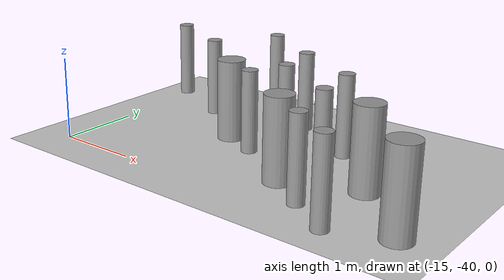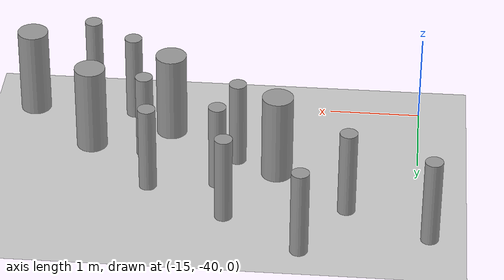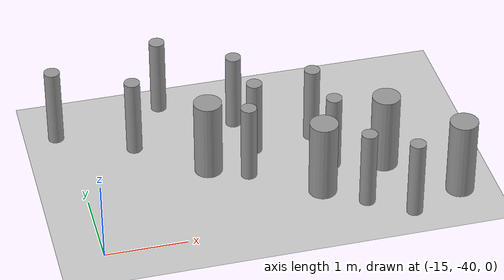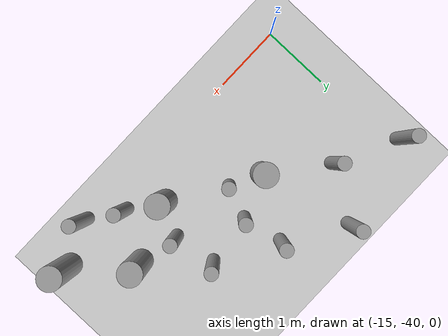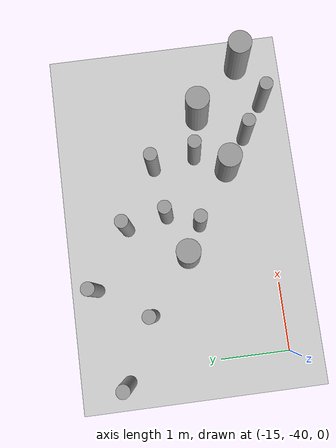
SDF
<sdf version="1.6">
 <world name="default">
  <model name="ground_plane">
   <static>1</static>
   <link name="link">
    <collision name="collision">
     <geometry><plane><normal>0 0 1</normal><size>100 100</size></plane></geometry>
     <surface><friction><ode><mu>100</mu><mu2>50</mu2></ode></friction></surface>
    </collision>
    <visual name="visual">
     <cast_shadows>0</cast_shadows>
     <geometry><plane><normal>0 0 1</normal><size>100 100</size></plane></geometry>
     <material>
      <script><uri>file://media/materials/scripts/gazebo.material</uri><name>Gazebo/Grey</name></script>
     </material>
    </visual>
   </link>
  </model>
  <model name="cyl_wall_clone_clone_1_clone_clone">
   <link name="link_0">
    <pose>-2.73893 -0.366465 0 0 -0 0</pose>
    <inertial>
     <mass>0.0374993</mass>
     <inertia>
      <ixx>0.00321281</ixx>
      <ixy>0</ixy>
      <ixz>0</ixz>
      <iyy>0.00321281</iyy>
      <iyz>0</iyz>
      <izz>0.000175774</izz>
     </inertia>
    </inertial>
    <visual name="visual">
     <geometry><cylinder><radius>0.0968661</radius><length>1</length></cylinder></geometry>
     <material>
      <lighting>1</lighting>
      <script><uri>file://media/materials/scripts/gazebo.material</uri><name>Gazebo/Grey</name></script>
      <ambient>0.3 0.3 0.3 1</ambient>
      <diffuse>0.7 0.7 0.7 1</diffuse>
      <specular>0.01 0.01 0.01 1</specular>
      <emissive>0 0 0 1</emissive>
     </material>
    </visual>
    <collision name="collision">
     <geometry><cylinder><radius>0.096866</radius><length>1</length></cylinder></geometry>
     <surface>
      <friction>
       <ode><mu>1</mu><mu2>1</mu2><fdir1>0 0 0</fdir1><slip1>0</slip1><slip2>0</slip2></ode>
       <torsional>
        <coefficient>1</coefficient>
        <patch_radius>0</patch_radius>
        <surface_radius>0</surface_radius>
        <use_patch_radius>1</use_patch_radius>
        <ode><slip>0</slip></ode>
       </torsional>
      </friction>
      <bounce><restitution_coefficient>0</restitution_coefficient><threshold>1e+06</threshold></bounce>
      <contact>
       <collide_without_contact>0</collide_without_contact>
       <collide_without_contact_bitmask>1</collide_without_contact_bitmask>
       <collide_bitmask>1</collide_bitmask>
       <ode>
        <soft_cfm>0</soft_cfm>
        <soft_erp>0.2</soft_erp>
        <kp>1e+13</kp>
        <kd>1</kd>
        <max_vel>0.01</max_vel>
        <min_depth>0</min_depth>
       </ode>
       <bullet>
        <split_impulse>1</split_impulse>
        <split_impulse_penetration_threshold>-0.01</split_impulse_penetration_threshold>
        <soft_cfm>0</soft_cfm>
        <soft_erp>0.2</soft_erp>
        <kp>1e+13</kp>
        <kd>1</kd>
       </bullet>
      </contact>
     </surface>
    </collision>
   </link>
   <link name="link_0_clone">
    <pose>-1.73893 0.61877 0 0 -0 0</pose>
    <inertial>
     <mass>0.0374993</mass>
     <inertia>
      <ixx>0.00321281</ixx>
      <ixy>0</ixy>
      <ixz>0</ixz>
      <iyy>0.00321281</iyy>
      <iyz>0</iyz>
      <izz>0.000175774</izz>
     </inertia>
    </inertial>
    <visual name="visual">
     <geometry><cylinder><radius>0.0968661</radius><length>1</length></cylinder></geometry>
     <material>
      <lighting>1</lighting>
      <script><uri>file://media/materials/scripts/gazebo.material</uri><name>Gazebo/Grey</name></script>
      <ambient>0.3 0.3 0.3 1</ambient>
      <diffuse>0.7 0.7 0.7 1</diffuse>
      <specular>0.01 0.01 0.01 1</specular>
      <emissive>0 0 0 1</emissive>
      <shader type="pixel"/>
     </material>
    </visual>
    <collision name="collision">
     <geometry><cylinder><radius>0.096866</radius><length>1</length></cylinder></geometry>
     <surface>
      <friction>
       <ode><mu>1</mu><mu2>1</mu2><fdir1>0 0 0</fdir1><slip1>0</slip1><slip2>0</slip2></ode>
       <torsional>
        <coefficient>1</coefficient>
        <patch_radius>0</patch_radius>
        <surface_radius>0</surface_radius>
        <use_patch_radius>1</use_patch_radius>
        <ode><slip>0</slip></ode>
       </torsional>
      </friction>
      <bounce><restitution_coefficient>0</restitution_coefficient><threshold>1e+06</threshold></bounce>
      <contact>
       <collide_without_contact>0</collide_without_contact>
       <collide_without_contact_bitmask>1</collide_without_contact_bitmask>
       <collide_bitmask>1</collide_bitmask>
       <ode>
        <soft_cfm>0</soft_cfm>
        <soft_erp>0.2</soft_erp>
        <kp>1e+13</kp>
        <kd>1</kd>
        <max_vel>0.01</max_vel>
        <min_depth>0</min_depth>
       </ode>
       <bullet>
        <split_impulse>1</split_impulse>
        <split_impulse_penetration_threshold>-0.01</split_impulse_penetration_threshold>
        <soft_cfm>0</soft_cfm>
        <soft_erp>0.2</soft_erp>
        <kp>1e+13</kp>
        <kd>1</kd>
       </bullet>
      </contact>
     </surface>
    </collision>
   </link>
   <link name="link_0_clone_clone">
    <pose>-0.327073 0.143919 0 0 -0 0</pose>
    <inertial>
     <mass>0.0374993</mass>
     <inertia>
      <ixx>0.00321281</ixx>
      <ixy>0</ixy>
      <ixz>0</ixz>
      <iyy>0.00321281</iyy>
      <iyz>0</iyz>
      <izz>0.000175774</izz>
     </inertia>
    </inertial>
    <visual name="visual">
     <geometry><cylinder><radius>0.0968661</radius><length>1</length></cylinder></geometry>
     <material>
      <lighting>1</lighting>
      <script><uri>file://media/materials/scripts/gazebo.material</uri><name>Gazebo/Grey</name></script>
      <ambient>0.3 0.3 0.3 1</ambient>
      <diffuse>0.7 0.7 0.7 1</diffuse>
      <specular>0.01 0.01 0.01 1</specular>
      <emissive>0 0 0 1</emissive>
      <shader type="pixel"/>
     </material>
    </visual>
    <collision name="collision">
     <geometry><cylinder><radius>0.096866</radius><length>1</length></cylinder></geometry>
     <surface>
      <friction>
       <ode><mu>1</mu><mu2>1</mu2><fdir1>0 0 0</fdir1><slip1>0</slip1><slip2>0</slip2></ode>
       <torsional>
        <coefficient>1</coefficient>
        <patch_radius>0</patch_radius>
        <surface_radius>0</surface_radius>
        <use_patch_radius>1</use_patch_radius>
        <ode><slip>0</slip></ode>
       </torsional>
      </friction>
      <bounce><restitution_coefficient>0</restitution_coefficient><threshold>1e+06</threshold></bounce>
      <contact>
       <collide_without_contact>0</collide_without_contact>
       <collide_without_contact_bitmask>1</collide_without_contact_bitmask>
       <collide_bitmask>1</collide_bitmask>
       <ode>
        <soft_cfm>0</soft_cfm>
        <soft_erp>0.2</soft_erp>
        <kp>1e+13</kp>
        <kd>1</kd>
        <max_vel>0.01</max_vel>
        <min_depth>0</min_depth>
       </ode>
       <bullet>
        <split_impulse>1</split_impulse>
        <split_impulse_penetration_threshold>-0.01</split_impulse_penetration_threshold>
        <soft_cfm>0</soft_cfm>
        <soft_erp>0.2</soft_erp>
        <kp>1e+13</kp>
        <kd>1</kd>
       </bullet>
      </contact>
     </surface>
    </collision>
   </link>
   <link name="link_0_clone_clone_0">
    <pose>1.26107 -0.419359 0 0 -0 0</pose>
    <inertial>
     <mass>0.0374993</mass>
     <inertia>
      <ixx>0.00321281</ixx>
      <ixy>0</ixy>
      <ixz>0</ixz>
      <iyy>0.00321281</iyy>
      <iyz>0</iyz>
      <izz>0.000175774</izz>
     </inertia>
    </inertial>
    <visual name="visual">
     <geometry><cylinder><radius>0.0968661</radius><length>1</length></cylinder></geometry>
     <material>
      <lighting>1</lighting>
      <script><uri>file://media/materials/scripts/gazebo.material</uri><name>Gazebo/Grey</name></script>
      <ambient>0.3 0.3 0.3 1</ambient>
      <diffuse>0.7 0.7 0.7 1</diffuse>
      <specular>0.01 0.01 0.01 1</specular>
      <emissive>0 0 0 1</emissive>
      <shader type="pixel"/>
     </material>
    </visual>
    <collision name="collision">
     <geometry><cylinder><radius>0.096866</radius><length>1</length></cylinder></geometry>
     <surface>
      <friction>
       <ode><mu>1</mu><mu2>1</mu2><fdir1>0 0 0</fdir1><slip1>0</slip1><slip2>0</slip2></ode>
       <torsional>
        <coefficient>1</coefficient>
        <patch_radius>0</patch_radius>
        <surface_radius>0</surface_radius>
        <use_patch_radius>1</use_patch_radius>
        <ode><slip>0</slip></ode>
       </torsional>
      </friction>
      <bounce><restitution_coefficient>0</restitution_coefficient><threshold>1e+06</threshold></bounce>
      <contact>
       <collide_without_contact>0</collide_without_contact>
       <collide_without_contact_bitmask>1</collide_without_contact_bitmask>
       <collide_bitmask>1</collide_bitmask>
       <ode>
        <soft_cfm>0</soft_cfm>
        <soft_erp>0.2</soft_erp>
        <kp>1e+13</kp>
        <kd>1</kd>
        <max_vel>0.01</max_vel>
        <min_depth>0</min_depth>
       </ode>
       <bullet>
        <split_impulse>1</split_impulse>
        <split_impulse_penetration_threshold>-0.01</split_impulse_penetration_threshold>
        <soft_cfm>0</soft_cfm>
        <soft_erp>0.2</soft_erp>
        <kp>1e+13</kp>
        <kd>1</kd>
       </bullet>
      </contact>
     </surface>
    </collision>
   </link>
   <link name="link_0_clone_clone_1">
    <pose>-1.73893 -0.277168 0 0 -0 0</pose>
    <inertial>
     <mass>0.0374993</mass>
     <inertia>
      <ixx>0.00321281</ixx>
      <ixy>0</ixy>
      <ixz>0</ixz>
      <iyy>0.00321281</iyy>
      <iyz>0</iyz>
      <izz>0.000175774</izz>
     </inertia>
    </inertial>
    <visual name="visual">
     <geometry><cylinder><radius>0.0968661</radius><length>1</length></cylinder></geometry>
     <material>
      <lighting>1</lighting>
      <script><uri>file://media/materials/scripts/gazebo.material</uri><name>Gazebo/Grey</name></script>
      <ambient>0.3 0.3 0.3 1</ambient>
      <diffuse>0.7 0.7 0.7 1</diffuse>
      <specular>0.01 0.01 0.01 1</specular>
      <emissive>0 0 0 1</emissive>
      <shader type="pixel"/>
     </material>
    </visual>
    <collision name="collision">
     <geometry><cylinder><radius>0.096866</radius><length>1</length></cylinder></geometry>
     <surface>
      <friction>
       <ode><mu>1</mu><mu2>1</mu2><fdir1>0 0 0</fdir1><slip1>0</slip1><slip2>0</slip2></ode>
       <torsional>
        <coefficient>1</coefficient>
        <patch_radius>0</patch_radius>
        <surface_radius>0</surface_radius>
        <use_patch_radius>1</use_patch_radius>
        <ode><slip>0</slip></ode>
       </torsional>
      </friction>
      <bounce><restitution_coefficient>0</restitution_coefficient><threshold>1e+06</threshold></bounce>
      <contact>
       <collide_without_contact>0</collide_without_contact>
       <collide_without_contact_bitmask>1</collide_without_contact_bitmask>
       <collide_bitmask>1</collide_bitmask>
       <ode>
        <soft_cfm>0</soft_cfm>
        <soft_erp>0.2</soft_erp>
        <kp>1e+13</kp>
        <kd>1</kd>
        <max_vel>0.01</max_vel>
        <min_depth>0</min_depth>
       </ode>
       <bullet>
        <split_impulse>1</split_impulse>
        <split_impulse_penetration_threshold>-0.01</split_impulse_penetration_threshold>
        <soft_cfm>0</soft_cfm>
        <soft_erp>0.2</soft_erp>
        <kp>1e+13</kp>
        <kd>1</kd>
       </bullet>
      </contact>
     </surface>
    </collision>
   </link>
   <link name="link_0_clone_clone_2">
    <pose>-0.738934 0.593961 0 0 -0 0</pose>
    <inertial>
     <mass>0.0374993</mass>
     <inertia>
      <ixx>0.00321281</ixx>
      <ixy>0</ixy>
      <ixz>0</ixz>
      <iyy>0.00321281</iyy>
      <iyz>0</iyz>
      <izz>0.000175774</izz>
     </inertia>
    </inertial>
    <visual name="visual">
     <geometry><cylinder><radius>0.0968661</radius><length>1</length></cylinder></geometry>
     <material>
      <lighting>1</lighting>
      <script><uri>file://media/materials/scripts/gazebo.material</uri><name>Gazebo/Grey</name></script>
      <ambient>0.3 0.3 0.3 1</ambient>
      <diffuse>0.7 0.7 0.7 1</diffuse>
      <specular>0.01 0.01 0.01 1</specular>
      <emissive>0 0 0 1</emissive>
      <shader type="pixel"/>
     </material>
    </visual>
    <collision name="collision">
     <geometry><cylinder><radius>0.096866</radius><length>1</length></cylinder></geometry>
     <surface>
      <friction>
       <ode><mu>1</mu><mu2>1</mu2><fdir1>0 0 0</fdir1><slip1>0</slip1><slip2>0</slip2></ode>
       <torsional>
        <coefficient>1</coefficient>
        <patch_radius>0</patch_radius>
        <surface_radius>0</surface_radius>
        <use_patch_radius>1</use_patch_radius>
        <ode><slip>0</slip></ode>
       </torsional>
      </friction>
      <bounce><restitution_coefficient>0</restitution_coefficient><threshold>1e+06</threshold></bounce>
      <contact>
       <collide_without_contact>0</collide_without_contact>
       <collide_without_contact_bitmask>1</collide_without_contact_bitmask>
       <collide_bitmask>1</collide_bitmask>
       <ode>
        <soft_cfm>0</soft_cfm>
        <soft_erp>0.2</soft_erp>
        <kp>1e+13</kp>
        <kd>1</kd>
        <max_vel>0.01</max_vel>
        <min_depth>0</min_depth>
       </ode>
       <bullet>
        <split_impulse>1</split_impulse>
        <split_impulse_penetration_threshold>-0.01</split_impulse_penetration_threshold>
        <soft_cfm>0</soft_cfm>
        <soft_erp>0.2</soft_erp>
        <kp>1e+13</kp>
        <kd>1</kd>
       </bullet>
      </contact>
     </surface>
    </collision>
   </link>
   <link name="link_0_clone_clone_3">
    <pose>0.261066 0.624849 0 0 -0 0</pose>
    <inertial>
     <mass>0.0374993</mass>
     <inertia>
      <ixx>0.00321281</ixx>
      <ixy>0</ixy>
      <ixz>0</ixz>
      <iyy>0.00321281</iyy>
      <iyz>0</iyz>
      <izz>0.000175774</izz>
     </inertia>
    </inertial>
    <visual name="visual">
     <geometry><cylinder><radius>0.0968661</radius><length>1</length></cylinder></geometry>
     <material>
      <lighting>1</lighting>
      <script><uri>file://media/materials/scripts/gazebo.material</uri><name>Gazebo/Grey</name></script>
      <ambient>0.3 0.3 0.3 1</ambient>
      <diffuse>0.7 0.7 0.7 1</diffuse>
      <specular>0.01 0.01 0.01 1</specular>
      <emissive>0 0 0 1</emissive>
      <shader type="pixel"/>
     </material>
    </visual>
    <collision name="collision">
     <geometry><cylinder><radius>0.096866</radius><length>1</length></cylinder></geometry>
     <surface>
      <friction>
       <ode><mu>1</mu><mu2>1</mu2><fdir1>0 0 0</fdir1><slip1>0</slip1><slip2>0</slip2></ode>
       <torsional>
        <coefficient>1</coefficient>
        <patch_radius>0</patch_radius>
        <surface_radius>0</surface_radius>
        <use_patch_radius>1</use_patch_radius>
        <ode><slip>0</slip></ode>
       </torsional>
      </friction>
      <bounce><restitution_coefficient>0</restitution_coefficient><threshold>1e+06</threshold></bounce>
      <contact>
       <collide_without_contact>0</collide_without_contact>
       <collide_without_contact_bitmask>1</collide_without_contact_bitmask>
       <collide_bitmask>1</collide_bitmask>
       <ode>
        <soft_cfm>0</soft_cfm>
        <soft_erp>0.2</soft_erp>
        <kp>1e+13</kp>
        <kd>1</kd>
        <max_vel>0.01</max_vel>
        <min_depth>0</min_depth>
       </ode>
       <bullet>
        <split_impulse>1</split_impulse>
        <split_impulse_penetration_threshold>-0.01</split_impulse_penetration_threshold>
        <soft_cfm>0</soft_cfm>
        <soft_erp>0.2</soft_erp>
        <kp>1e+13</kp>
        <kd>1</kd>
       </bullet>
      </contact>
     </surface>
    </collision>
   </link>
   <link name="link_0_clone_clone_4">
    <pose>-0.239049 -0.353105 0 0 -0 0</pose>
    <inertial>
     <mass>0.0374993</mass>
     <inertia>
      <ixx>0.00321281</ixx>
      <ixy>0</ixy>
      <ixz>0</ixz>
      <iyy>0.00321281</iyy>
      <iyz>0</iyz>
      <izz>0.000175774</izz>
     </inertia>
    </inertial>
    <visual name="visual">
     <geometry><cylinder><radius>0.0968661</radius><length>1</length></cylinder></geometry>
     <material>
      <lighting>1</lighting>
      <script><uri>file://media/materials/scripts/gazebo.material</uri><name>Gazebo/Grey</name></script>
      <ambient>0.3 0.3 0.3 1</ambient>
      <diffuse>0.7 0.7 0.7 1</diffuse>
      <specular>0.01 0.01 0.01 1</specular>
      <emissive>0 0 0 1</emissive>
      <shader type="pixel"/>
     </material>
    </visual>
    <collision name="collision">
     <geometry><cylinder><radius>0.096866</radius><length>1</length></cylinder></geometry>
     <surface>
      <friction>
       <ode><mu>1</mu><mu2>1</mu2><fdir1>0 0 0</fdir1><slip1>0</slip1><slip2>0</slip2></ode>
       <torsional>
        <coefficient>1</coefficient>
        <patch_radius>0</patch_radius>
        <surface_radius>0</surface_radius>
        <use_patch_radius>1</use_patch_radius>
        <ode><slip>0</slip></ode>
       </torsional>
      </friction>
      <bounce><restitution_coefficient>0</restitution_coefficient><threshold>1e+06</threshold></bounce>
      <contact>
       <collide_without_contact>0</collide_without_contact>
       <collide_without_contact_bitmask>1</collide_without_contact_bitmask>
       <collide_bitmask>1</collide_bitmask>
       <ode>
        <soft_cfm>0</soft_cfm>
        <soft_erp>0.2</soft_erp>
        <kp>1e+13</kp>
        <kd>1</kd>
        <max_vel>0.01</max_vel>
        <min_depth>0</min_depth>
       </ode>
       <bullet>
        <split_impulse>1</split_impulse>
        <split_impulse_penetration_threshold>-0.01</split_impulse_penetration_threshold>
        <soft_cfm>0</soft_cfm>
        <soft_erp>0.2</soft_erp>
        <kp>1e+13</kp>
        <kd>1</kd>
       </bullet>
      </contact>
     </surface>
    </collision>
   </link>
   <link name="link_0_clone_clone_5">
    <pose>0.672792 0.143919 0 0 -0 0</pose>
    <inertial>
     <mass>0.0374993</mass>
     <inertia>
      <ixx>0.00321281</ixx>
      <ixy>0</ixy>
      <ixz>0</ixz>
      <iyy>0.00321281</iyy>
      <iyz>0</iyz>
      <izz>0.000175774</izz>
     </inertia>
    </inertial>
    <visual name="visual">
     <geometry><cylinder><radius>0.0968661</radius><length>1</length></cylinder></geometry>
     <material>
      <lighting>1</lighting>
      <script><uri>file://media/materials/scripts/gazebo.material</uri><name>Gazebo/Grey</name></script>
      <ambient>0.3 0.3 0.3 1</ambient>
      <diffuse>0.7 0.7 0.7 1</diffuse>
      <specular>0.01 0.01 0.01 1</specular>
      <emissive>0 0 0 1</emissive>
      <shader type="pixel"/>
     </material>
    </visual>
    <collision name="collision">
     <geometry><cylinder><radius>0.096866</radius><length>1</length></cylinder></geometry>
     <surface>
      <friction>
       <ode><mu>1</mu><mu2>1</mu2><fdir1>0 0 0</fdir1><slip1>0</slip1><slip2>0</slip2></ode>
       <torsional>
        <coefficient>1</coefficient>
        <patch_radius>0</patch_radius>
        <surface_radius>0</surface_radius>
        <use_patch_radius>1</use_patch_radius>
        <ode><slip>0</slip></ode>
       </torsional>
      </friction>
      <bounce><restitution_coefficient>0</restitution_coefficient><threshold>1e+06</threshold></bounce>
      <contact>
       <collide_without_contact>0</collide_without_contact>
       <collide_without_contact_bitmask>1</collide_without_contact_bitmask>
       <collide_bitmask>1</collide_bitmask>
       <ode>
        <soft_cfm>0</soft_cfm>
        <soft_erp>0.2</soft_erp>
        <kp>1e+13</kp>
        <kd>1</kd>
        <max_vel>0.01</max_vel>
        <min_depth>0</min_depth>
       </ode>
       <bullet>
        <split_impulse>1</split_impulse>
        <split_impulse_penetration_threshold>-0.01</split_impulse_penetration_threshold>
        <soft_cfm>0</soft_cfm>
        <soft_erp>0.2</soft_erp>
        <kp>1e+13</kp>
        <kd>1</kd>
       </bullet>
      </contact>
     </surface>
    </collision>
   </link>
   <link name="link_0_clone_clone_6">
    <pose>1.84596 -0.433423 0 0 -0 0</pose>
    <inertial>
     <mass>0.0374993</mass>
     <inertia>
      <ixx>0.00321281</ixx>
      <ixy>0</ixy>
      <ixz>0</ixz>
      <iyy>0.00321281</iyy>
      <iyz>0</iyz>
      <izz>0.000175774</izz>
     </inertia>
    </inertial>
    <visual name="visual">
     <geometry><cylinder><radius>0.0968661</radius><length>1</length></cylinder></geometry>
     <material>
      <lighting>1</lighting>
      <script><uri>file://media/materials/scripts/gazebo.material</uri><name>Gazebo/Grey</name></script>
      <ambient>0.3 0.3 0.3 1</ambient>
      <diffuse>0.7 0.7 0.7 1</diffuse>
      <specular>0.01 0.01 0.01 1</specular>
      <emissive>0 0 0 1</emissive>
      <shader type="pixel"/>
     </material>
    </visual>
    <collision name="collision">
     <geometry><cylinder><radius>0.096866</radius><length>1</length></cylinder></geometry>
     <surface>
      <friction>
       <ode><mu>1</mu><mu2>1</mu2><fdir1>0 0 0</fdir1><slip1>0</slip1><slip2>0</slip2></ode>
       <torsional>
        <coefficient>1</coefficient>
        <patch_radius>0</patch_radius>
        <surface_radius>0</surface_radius>
        <use_patch_radius>1</use_patch_radius>
        <ode><slip>0</slip></ode>
       </torsional>
      </friction>
      <bounce><restitution_coefficient>0</restitution_coefficient><threshold>1e+06</threshold></bounce>
      <contact>
       <collide_without_contact>0</collide_without_contact>
       <collide_without_contact_bitmask>1</collide_without_contact_bitmask>
       <collide_bitmask>1</collide_bitmask>
       <ode>
        <soft_cfm>0</soft_cfm>
        <soft_erp>0.2</soft_erp>
        <kp>1e+13</kp>
        <kd>1</kd>
        <max_vel>0.01</max_vel>
        <min_depth>0</min_depth>
       </ode>
       <bullet>
        <split_impulse>1</split_impulse>
        <split_impulse_penetration_threshold>-0.01</split_impulse_penetration_threshold>
        <soft_cfm>0</soft_cfm>
        <soft_erp>0.2</soft_erp>
        <kp>1e+13</kp>
        <kd>1</kd>
       </bullet>
      </contact>
     </surface>
    </collision>
   </link>
   <link name="link_1">
    <pose>-0.738934 -0.397931 0 0 -0 0</pose>
    <inertial>
     <mass>0.117398</mass>
     <inertia>
      <ixx>0.0106445</ixx>
      <ixy>0</ixy>
      <ixz>0</ixz>
      <iyy>0.0106445</iyy>
      <iyz>0</iyz>
      <izz>0.00172278</izz>
     </inertia>
    </inertial>
    <visual name="visual">
     <geometry><cylinder><radius>0.171317</radius><length>1</length></cylinder></geometry>
     <material>
      <lighting>1</lighting>
      <script><uri>file://media/materials/scripts/gazebo.material</uri><name>Gazebo/Grey</name></script>
      <ambient>0.3 0.3 0.3 1</ambient>
      <diffuse>0.7 0.7 0.7 1</diffuse>
      <specular>0.01 0.01 0.01 1</specular>
      <emissive>0 0 0 1</emissive>
     </material>
    </visual>
    <collision name="collision">
     <geometry><cylinder><radius>0.171317</radius><length>1</length></cylinder></geometry>
     <surface>
      <friction>
       <ode><mu>1</mu><mu2>1</mu2><fdir1>0 0 0</fdir1><slip1>0</slip1><slip2>0</slip2></ode>
       <torsional>
        <coefficient>1</coefficient>
        <patch_radius>0</patch_radius>
        <surface_radius>0</surface_radius>
        <use_patch_radius>1</use_patch_radius>
        <ode><slip>0</slip></ode>
       </torsional>
      </friction>
      <bounce><restitution_coefficient>0</restitution_coefficient><threshold>1e+06</threshold></bounce>
      <contact>
       <collide_without_contact>0</collide_without_contact>
       <collide_without_contact_bitmask>1</collide_without_contact_bitmask>
       <collide_bitmask>1</collide_bitmask>
       <ode>
        <soft_cfm>0</soft_cfm>
        <soft_erp>0.2</soft_erp>
        <kp>1e+13</kp>
        <kd>1</kd>
        <max_vel>0.01</max_vel>
        <min_depth>0</min_depth>
       </ode>
       <bullet>
        <split_impulse>1</split_impulse>
        <split_impulse_penetration_threshold>-0.01</split_impulse_penetration_threshold>
        <soft_cfm>0</soft_cfm>
        <soft_erp>0.2</soft_erp>
        <kp>1e+13</kp>
        <kd>1</kd>
       </bullet>
      </contact>
     </surface>
    </collision>
   </link>
   <link name="link_1_clone">
    <pose>0.697784 -0.380861 0 0 -0 0</pose>
    <inertial>
     <mass>0.117398</mass>
     <inertia>
      <ixx>0.0106445</ixx>
      <ixy>0</ixy>
      <ixz>0</ixz>
      <iyy>0.0106445</iyy>
      <iyz>0</iyz>
      <izz>0.00172278</izz>
     </inertia>
    </inertial>
    <visual name="visual">
     <geometry><cylinder><radius>0.171317</radius><length>1</length></cylinder></geometry>
     <material>
      <lighting>1</lighting>
      <script><uri>file://media/materials/scripts/gazebo.material</uri><name>Gazebo/Grey</name></script>
      <ambient>0.3 0.3 0.3 1</ambient>
      <diffuse>0.7 0.7 0.7 1</diffuse>
      <specular>0.01 0.01 0.01 1</specular>
      <emissive>0 0 0 1</emissive>
      <shader type="pixel"/>
     </material>
    </visual>
    <collision name="collision">
     <geometry><cylinder><radius>0.171317</radius><length>1</length></cylinder></geometry>
     <surface>
      <friction>
       <ode><mu>1</mu><mu2>1</mu2><fdir1>0 0 0</fdir1><slip1>0</slip1><slip2>0</slip2></ode>
       <torsional>
        <coefficient>1</coefficient>
        <patch_radius>0</patch_radius>
        <surface_radius>0</surface_radius>
        <use_patch_radius>1</use_patch_radius>
        <ode><slip>0</slip></ode>
       </torsional>
      </friction>
      <bounce><restitution_coefficient>0</restitution_coefficient><threshold>1e+06</threshold></bounce>
      <contact>
       <collide_without_contact>0</collide_without_contact>
       <collide_without_contact_bitmask>1</collide_without_contact_bitmask>
       <collide_bitmask>1</collide_bitmask>
       <ode>
        <soft_cfm>0</soft_cfm>
        <soft_erp>0.2</soft_erp>
        <kp>1e+13</kp>
        <kd>1</kd>
        <max_vel>0.01</max_vel>
        <min_depth>0</min_depth>
       </ode>
       <bullet>
        <split_impulse>1</split_impulse>
        <split_impulse_penetration_threshold>-0.01</split_impulse_penetration_threshold>
        <soft_cfm>0</soft_cfm>
        <soft_erp>0.2</soft_erp>
        <kp>1e+13</kp>
        <kd>1</kd>
       </bullet>
      </contact>
     </surface>
    </collision>
   </link>
   <link name="link_1_clone_0">
    <pose>1.26107 0.358974 0 0 -0 0</pose>
    <inertial>
     <mass>0.117398</mass>
     <inertia>
      <ixx>0.0106445</ixx>
      <ixy>0</ixy>
      <ixz>0</ixz>
      <iyy>0.0106445</iyy>
      <iyz>0</iyz>
      <izz>0.00172278</izz>
     </inertia>
    </inertial>
    <visual name="visual">
     <geometry><cylinder><radius>0.171317</radius><length>1</length></cylinder></geometry>
     <material>
      <lighting>1</lighting>
      <script><uri>file://media/materials/scripts/gazebo.material</uri><name>Gazebo/Grey</name></script>
      <ambient>0.3 0.3 0.3 1</ambient>
      <diffuse>0.7 0.7 0.7 1</diffuse>
      <specular>0.01 0.01 0.01 1</specular>
      <emissive>0 0 0 1</emissive>
      <shader type="pixel"/>
     </material>
    </visual>
    <collision name="collision">
     <geometry><cylinder><radius>0.171317</radius><length>1</length></cylinder></geometry>
     <surface>
      <friction>
       <ode><mu>1</mu><mu2>1</mu2><fdir1>0 0 0</fdir1><slip1>0</slip1><slip2>0</slip2></ode>
       <torsional>
        <coefficient>1</coefficient>
        <patch_radius>0</patch_radius>
        <surface_radius>0</surface_radius>
        <use_patch_radius>1</use_patch_radius>
        <ode><slip>0</slip></ode>
       </torsional>
      </friction>
      <bounce><restitution_coefficient>0</restitution_coefficient><threshold>1e+06</threshold></bounce>
      <contact>
       <collide_without_contact>0</collide_without_contact>
       <collide_without_contact_bitmask>1</collide_without_contact_bitmask>
       <collide_bitmask>1</collide_bitmask>
       <ode>
        <soft_cfm>0</soft_cfm>
        <soft_erp>0.2</soft_erp>
        <kp>1e+13</kp>
        <kd>1</kd>
        <max_vel>0.01</max_vel>
        <min_depth>0</min_depth>
       </ode>
       <bullet>
        <split_impulse>1</split_impulse>
        <split_impulse_penetration_threshold>-0.01</split_impulse_penetration_threshold>
        <soft_cfm>0</soft_cfm>
        <soft_erp>0.2</soft_erp>
        <kp>1e+13</kp>
        <kd>1</kd>
       </bullet>
      </contact>
     </surface>
    </collision>
   </link>
   <link name="link_1_clone_1">
    <pose>2.26107 0.143919 0 0 -0 0</pose>
    <inertial>
     <mass>0.117398</mass>
     <inertia>
      <ixx>0.0106445</ixx>
      <ixy>0</ixy>
      <ixz>0</ixz>
      <iyy>0.0106445</iyy>
      <iyz>0</iyz>
      <izz>0.00172278</izz>
     </inertia>
    </inertial>
    <visual name="visual">
     <geometry><cylinder><radius>0.171317</radius><length>1</length></cylinder></geometry>
     <material>
      <lighting>1</lighting>
      <script><uri>file://media/materials/scripts/gazebo.material</uri><name>Gazebo/Grey</name></script>
      <ambient>0.3 0.3 0.3 1</ambient>
      <diffuse>0.7 0.7 0.7 1</diffuse>
      <specular>0.01 0.01 0.01 1</specular>
      <emissive>0 0 0 1</emissive>
      <shader type="pixel"/>
     </material>
    </visual>
    <collision name="collision">
     <geometry><cylinder><radius>0.171317</radius><length>1</length></cylinder></geometry>
     <surface>
      <friction>
       <ode><mu>1</mu><mu2>1</mu2><fdir1>0 0 0</fdir1><slip1>0</slip1><slip2>0</slip2></ode>
       <torsional>
        <coefficient>1</coefficient>
        <patch_radius>0</patch_radius>
        <surface_radius>0</surface_radius>
        <use_patch_radius>1</use_patch_radius>
        <ode><slip>0</slip></ode>
       </torsional>
      </friction>
      <bounce><restitution_coefficient>0</restitution_coefficient><threshold>1e+06</threshold></bounce>
      <contact>
       <collide_without_contact>0</collide_without_contact>
       <collide_without_contact_bitmask>1</collide_without_contact_bitmask>
       <collide_bitmask>1</collide_bitmask>
       <ode>
        <soft_cfm>0</soft_cfm>
        <soft_erp>0.2</soft_erp>
        <kp>1e+13</kp>
        <kd>1</kd>
        <max_vel>0.01</max_vel>
        <min_depth>0</min_depth>
       </ode>
       <bullet>
        <split_impulse>1</split_impulse>
        <split_impulse_penetration_threshold>-0.01</split_impulse_penetration_threshold>
        <soft_cfm>0</soft_cfm>
        <soft_erp>0.2</soft_erp>
        <kp>1e+13</kp>
        <kd>1</kd>
       </bullet>
      </contact>
     </surface>
    </collision>
   </link>
   <static>1</static>
   <pose>-12.6215 -38.7685 0.5 0 0 -0.549185</pose>
  </model>
 </world>
</sdf>
